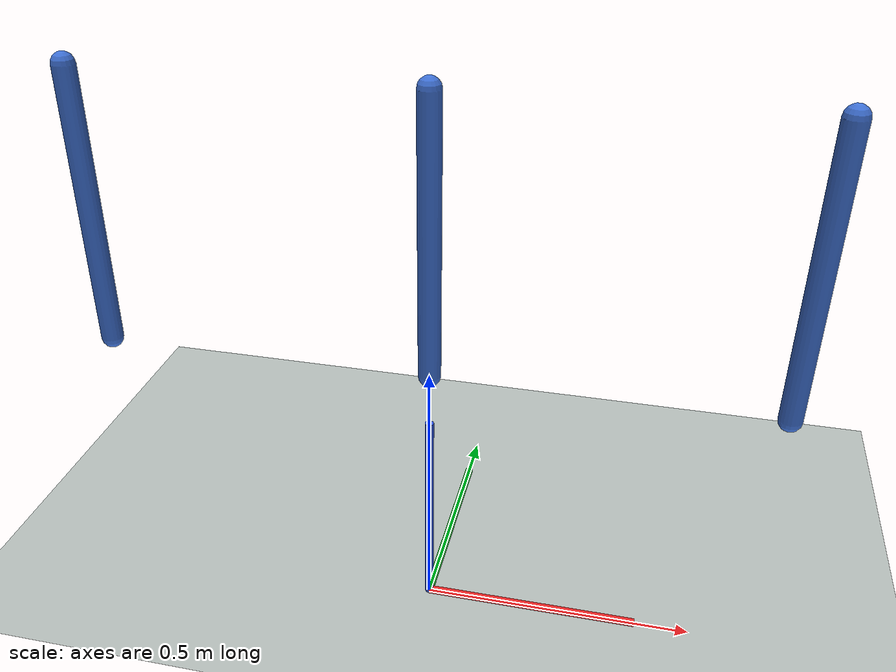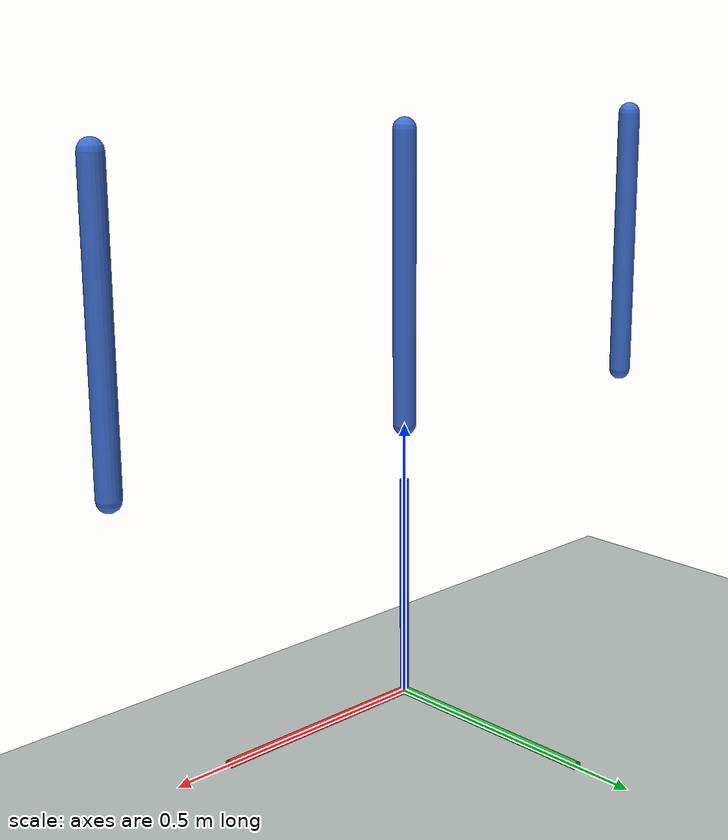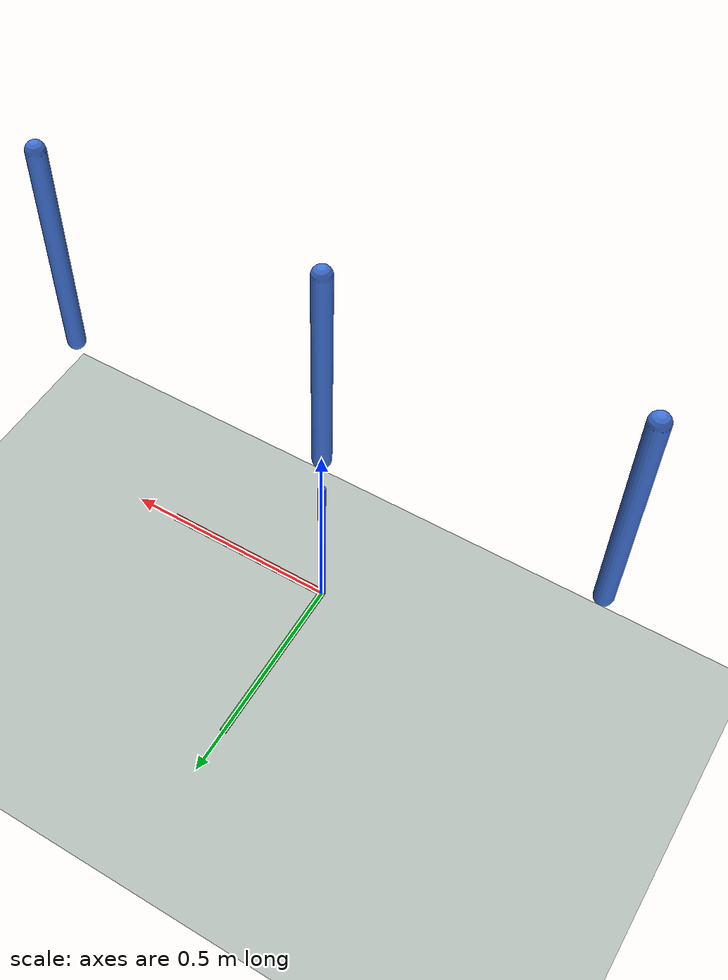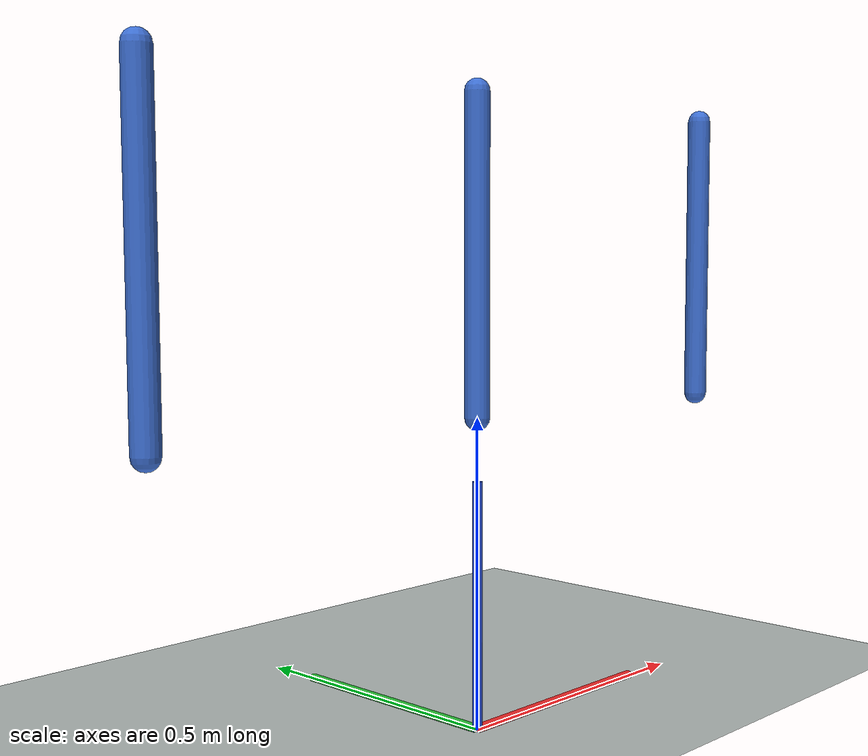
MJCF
<mujoco>
  <statistic extent="1.5" center="0 0 0.5"/>
  <compiler angle="radian"/>
  <visual>
    <headlight ambient="0.30 0.30 0.30" diffuse="0.35 0.35 0.35" specular="0.05 0.05 0.05"/>
    <rgba haze="0.87 0.90 0.92 1"/>
    <quality shadowsize="4096"/>
    <global azimuth="140" elevation="-20" cameraid="0"/>
  </visual>
  <asset>
    <!-- 空。上から下へのグラデーション -->
    <texture type="skybox" builtin="gradient" rgb1="0.62 0.74 0.86" rgb2="0.94 0.96 0.97" width="512" height="3072"/>

    <!-- 床のチェッカー模様。スケール感が掴めるので必ず入れる -->
    <texture type="2d" name="grid" builtin="checker" mark="edge" rgb1="0.85 0.87 0.86" rgb2="0.55 0.60 0.58" markrgb="0.35 0.38 0.36" width="300" height="300"/>

    <material name="grid" texture="grid" texrepeat="6 6" texuniform="true" reflectance="0.05"/>

    <!-- リンク用のマテリアル。色をここで一元管理できる -->
    <material name="link" rgba="0.25 0.45 0.85 1" specular="0.3" shininess="0.4"/>
  </asset>
  <worldbody>
    <!-- シーンを見るカメラ -->
    <camera name="main" pos="0 -3 1.5" mode="targetbody" target="b"/>

    <!-- キーライト: 影を落とす主光源 -->
    <light name="key" pos="1.5 -1.5 3" dir="-0.4 0.4 -1" directional="true" diffuse="0.45 0.45 0.45" specular="0.15 0.15 0.15" castshadow="true"/>

    <!-- フィルライト: 反対側から弱く当てて影を潰しすぎない -->
    <light name="fill" pos="-2 2 2.5" dir="0.5 -0.5 -1" directional="true" diffuse="0.15 0.15 0.15" castshadow="false"/>

    <geom name="floor" type="plane" size="3 3 0.05" material="grid"/>

    <!-- 三軸 -->
    <site name="axis_x" type="cylinder" fromto="0 0 0.002  0.4 0 0.002" size="0.008" rgba="0.9 0.15 0.15 1"/>
    <site name="axis_y" type="cylinder" fromto="0 0 0.002  0 0.4 0.002" size="0.008" rgba="0.15 0.7 0.2 1"/>
    <site name="axis_z" type="cylinder" fromto="0 0 0      0 0 0.4" size="0.008" rgba="0.2 0.35 0.9 1"/>

    <body name="a" pos="-0.6 0 1">
      <joint name="j_motor" type="hinge" axis="0 1 0" damping="0.05"/>
      <geom type="capsule" fromto="0 0 0  0 0 -0.5" size="0.02" material="link"/>
    </body>
    <body name="b" pos="0 0 1">
      <joint name="j_pos" type="hinge" axis="0 1 0" damping="0.05"/>
      <geom type="capsule" fromto="0 0 0  0 0 -0.5" size="0.02" material="link"/>
    </body>
    <body name="c" pos="0.6 0 1">
      <joint name="j_vel" type="hinge" axis="0 1 0" damping="0.05"/>
      <geom type="capsule" fromto="0 0 0  0 0 -0.5" size="0.02" material="link"/>
    </body>
  </worldbody>

  <actuator>
    <motor name="a_motor" joint="j_motor" gear="1" ctrlrange="-2 2"/>
    <position name="a_pos" joint="j_pos" kp="30" kv="2" ctrlrange="-3.14 3.14"/>
    <velocity name="a_vel" joint="j_vel" kv="1.5" ctrlrange="-5 5"/>
  </actuator>
</mujoco>
